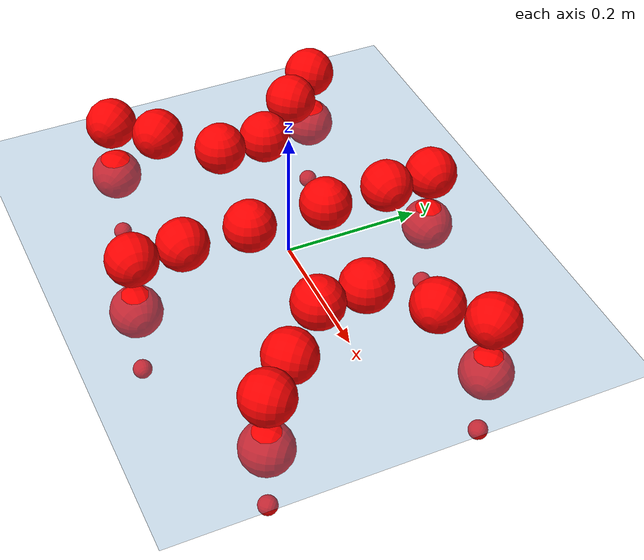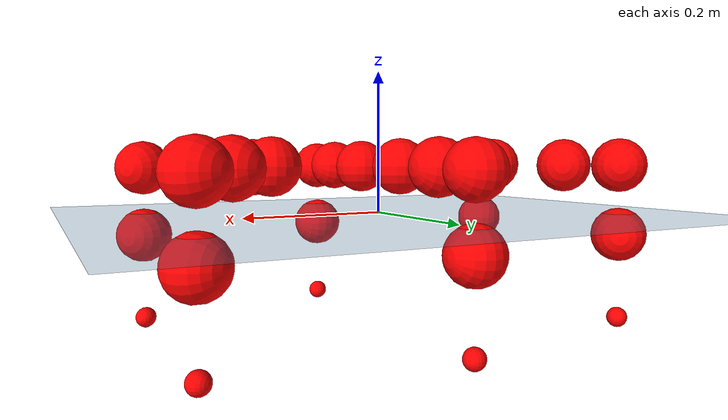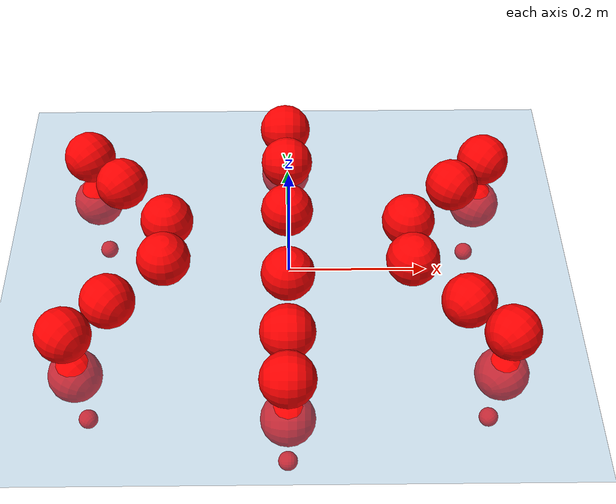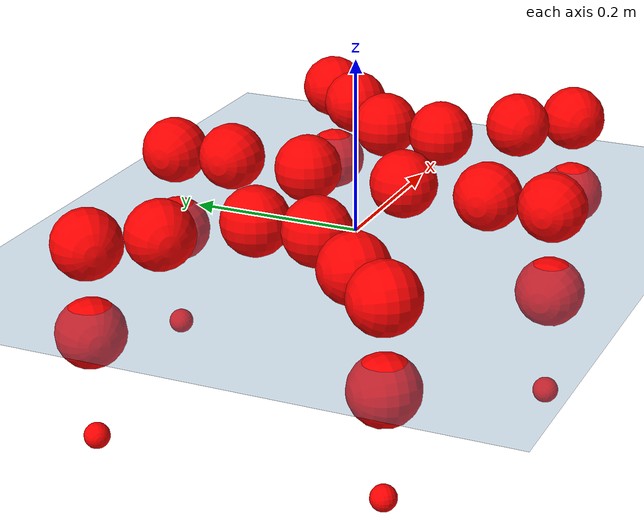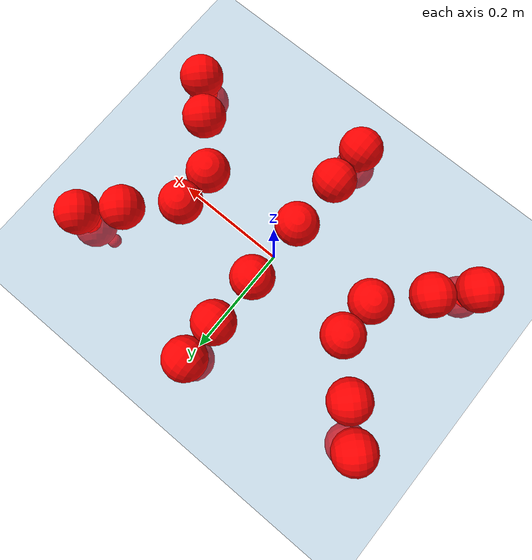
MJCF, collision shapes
<mujoco model="Golem">
  <compiler angle="radian" assetdir="assets" balanceinertia="true" inertiafromgeom="false"/>

  <option timestep="0.005" density="1.2" viscosity="2e-05"/>

  <size nkey="1"/>

  <visual>
    <quality shadowsize="8192"/>
    <map shadowclip="0.5"/>
  </visual>

  <default>
    <default class="/">
      <joint armature="0.01" damping="0.01" frictionloss="0.01"/>
      <geom contype="0" conaffinity="0" group="1" solref="-1000 -80"/>
      <site size="0.01 0.005 0.005" group="5"/>
      <general forcelimited="true" biastype="affine" gainprm="25" biasprm="0 -25 -0.5"/>
      <default class="visual">
        <geom type="mesh" group="2"/>
      </default>
      <default class="collision">
        <geom group="3"/>
      </default>
      <default class="foot">
        <geom size="0.01 0 0" condim="6" group="4" priority="1" solimp="0.015 1 0.01"/>
      </default>
      <default class="reward_collision_sphere">
        <geom group="5" rgba="1 0 0 1"/>
      </default>
    </default>
  </default>

  <asset>
    <texture type="skybox" colorspace="auto" name="//unnamed_texture_0" builtin="gradient" rgb1="0.95 0.95 0.95" rgb2="0.95 0.95 0.95" width="100" height="600"/>
    <texture type="2d" colorspace="auto" name="texplane" builtin="checker" rgb1="0.345 0.575 0.748" rgb2="0.345 0.575 0.748" markrgb="1 1 1" width="512" height="512"/>
    <material name="MatPlane" class="/" texture="texplane" texuniform="true" texrepeat="2 2" specular="0.9"/>
    <mesh name="body" class="/" file="body.stl" scale="0.001 0.001 0.001"/>
    <mesh name="coxa" class="/" file="coxa.stl" scale="0.001 0.001 0.001"/>
    <mesh name="femur" class="/" file="femur.stl" scale="0.001 0.001 0.001"/>
    <mesh name="tibia" class="/" file="tibia.stl" scale="0.001 0.001 0.001"/>
    <mesh name="tarsus" class="/" file="tarsus.stl" scale="0.001 0.001 0.001"/>
  </asset>

  <worldbody>
    <geom name="floor" class="/" size="100 100 0.125" type="plane" group="0" material="MatPlane"/>
    <light name="toplight_shadow" class="/" pos="0 0 5" dir="0.0990148 0.0990148 -0.990148" type="directional" ambient="0.04 0.04 0.04" diffuse="0.55 0.55 0.55" specular="0.12 0.12 0.12"/>
    <light name="toplight_fill" class="/" pos="0 0 5" dir="0.0990148 0.0990148 -0.990148" type="directional" castshadow="false" ambient="0.04 0.04 0.04" diffuse="0.3 0.3 0.3" specular="0.08 0.08 0.08"/>
    <body name="trunk" pos="-0.000986121 0.00128586 -0.000499097" quat="1 5.71918e-05 7.86079e-06 -0.000136882">
      <inertial pos="0.00113571 -0.000741348 -0.00531963" quat="0.999997 0.000677024 -0.00172637 0.00155286" mass="3.24323" diaginertia="0.0172185 0.00167017 0.0122943"/>
      <joint name="//unnamed_joint_0" type="free"/>
      <geom name="//unnamed_geom_1" class="/" pos="0 0 0.0668618" quat="1 0 0 0" type="mesh" rgba="0.9 0.9 0.9 1" mesh="body"/>
      <site name="imu" class="/" pos="0.141883 0.00123035 0.101834" size="0.00951226"/>
      <camera name="track" class="/" pos="0 -1.39559 0" quat="0.707107 0.707107 0 0" mode="trackcom"/>
      <camera name="ego_camera" class="/" pos="0.144452 0 0.104472" quat="-0.5 -0.5 0.5 0.5"/>
      <body name="coxa_RR" pos="-0.197933 -0.0578543 0.0690118" quat="0.382724 -1.24143e-05 -0.000394957 -0.923863">
        <inertial pos="-0.000369424 -0.00173162 0.00218622" quat="0.999992 -0.00168587 -0.000850533 -0.00341479" mass="0.174173" diaginertia="0.0170701 0.00168147 0.0124483"/>
        <joint name="coxa_joint_RR" class="/" pos="0 0 0" axis="-0.000502676 -0.00303778 -0.999995" range="-3.13122 3.13449" armature="0.00955784" damping="0.00798133" frictionloss="0.00934897"/>
        <geom name="//unnamed_geom_2" class="/" type="mesh" rgba="0.2 0.2 0.2 1" mesh="coxa"/>
        <geom name="//unnamed_geom_3" class="reward_collision_sphere" size="0.0380491" pos="-0.033335 0 0"/>
        <body name="femur_RR" pos="0.0681904 0.00073837 -0.00113217" quat="0.499771 -0.499987 0.500003 0.500239">
          <inertial pos="-0.000628254 0.000464974 0.000407352" quat="1 0.000129306 0.000366068 -0.000199964" mass="0.171563" diaginertia="0.0168933 0.00165604 0.0124371"/>
          <joint name="femur_joint_RR" class="/" pos="0 0 0" axis="0.00132616 -0.00154464 -0.999998" range="-3.13559 3.12702" armature="0.00950182" damping="0.00489934" frictionloss="0.00951724"/>
          <geom name="//unnamed_geom_4" class="/" type="mesh" rgba="0.9 0.9 0.9 1" mesh="femur"/>
          <geom name="//unnamed_geom_5" class="reward_collision_sphere" size="0.0380491"/>
          <body name="tibia_RR" pos="0.00064992 -0.076645 0.000948752" quat="0.000182287 1 7.24479e-05 -0.000132851">
            <inertial pos="-0.00097132 -0.000547097 -0.000417741" quat="0.999994 -0.00243201 -0.00233164 0.000318103" mass="0.169627" diaginertia="0.0168427 0.00164851 0.0126193"/>
            <joint name="tibia_joint_RR" class="/" pos="0 0 0" axis="0.000168907 -0.000608105 1" range="-3.12147 3.09743" armature="0.00947864" damping="0.00688955" frictionloss="0.00964457"/>
            <geom name="//unnamed_geom_6" class="/" type="mesh" rgba="0.2 0.2 0.2 1" mesh="tibia"/>
            <geom name="//unnamed_geom_7" class="reward_collision_sphere" size="0.0380491"/>
            <body name="tarsus_RR" pos="0.0978895 -0.000719155 -0.00080559" quat="1 -8.41233e-05 2.6966e-05 -0.000162251">
              <inertial pos="0.0687242 0.00276553 -0.000857387" quat="0.499612 0.501583 0.496567 0.502219" mass="0.174562" diaginertia="0.0173462 0.00169916 0.0126468"/>
              <joint name="tarsus_joint_RR" class="/" pos="0 0 0" axis="-0.00113175 -0.00754113 0.999971" range="-3.10359 3.14271" armature="0.00906053" damping="0.0417278" frictionloss="0.00913945"/>
              <geom name="//unnamed_geom_8" class="/" type="mesh" rgba="0.9 0.9 0.9 1" mesh="tarsus"/>
              <geom name="foot_1" class="foot" size="0.00907049" pos="0.124451 0 0" quat="0 -0.707107 0 0.707107"/>
              <geom name="//unnamed_geom_10" class="reward_collision_sphere" size="0.0380491"/>
              <geom name="//unnamed_geom_11" class="reward_collision_sphere" size="0.0142684" pos="0.119451 0 0"/>
              <site name="foot_1" class="foot" pos="0.124451 0 0" quat="0 -0.707107 0 0.707107" size="0.00951226"/>
            </body>
          </body>
        </body>
      </body>
      <body name="coxa_RM" pos="-0.000910416 -0.0929432 0.0661285" quat="0.707056 0.000123213 1.90496e-05 -0.707157">
        <inertial pos="-0.000173584 -0.000795055 -0.000476402" quat="1 0.00050761 0.000113969 -0.000175866" mass="0.171369" diaginertia="0.0168193 0.00164232 0.0123542"/>
        <joint name="coxa_joint_RM" class="/" pos="0 0 0" axis="-0.00478583 0.00250429 -0.999985" range="-3.13465 3.15261" armature="0.00960681" damping="0.00772822" frictionloss="0.00857592"/>
        <geom name="//unnamed_geom_12" class="/" type="mesh" rgba="0.2 0.2 0.2 1" mesh="coxa"/>
        <geom name="//unnamed_geom_13" class="reward_collision_sphere" size="0.0380491" pos="-0.033335 0 0"/>
        <body name="femur_RM" pos="0.0655288 -0.00117447 0.000569186" quat="0.499976 -0.499934 0.500084 0.500006">
          <inertial pos="-5.11878e-05 0.000293989 0.000359218" quat="0.999998 0.00133194 0.00033657 -0.00159821" mass="0.169976" diaginertia="0.0165475 0.00166181 0.0123445"/>
          <joint name="femur_joint_RM" class="/" pos="0 0 0" axis="0.0012041 0.00192519 -0.999997" range="-3.1485 3.15382" armature="0.0092524" damping="0" frictionloss="0.00951494"/>
          <geom name="//unnamed_geom_14" class="/" type="mesh" rgba="0.9 0.9 0.9 1" mesh="femur"/>
          <geom name="//unnamed_geom_15" class="reward_collision_sphere" size="0.0380491"/>
          <body name="tibia_RM" pos="0.00124481 -0.0734141 -0.000324284" quat="-4.40577e-06 1 -4.98222e-06 -5.10532e-07">
            <inertial pos="-0.00177788 -0.0021448 -0.00101239" quat="0.999959 -0.005836 -0.00628375 -0.00295711" mass="0.171073" diaginertia="0.0169107 0.00165196 0.0121495"/>
            <joint name="tibia_joint_RM" class="/" pos="0 0 0" axis="-0.00030608 -0.00025925 1" range="-3.13513 3.12033" armature="0.00912249" damping="0.0123553" frictionloss="0.00924433"/>
            <geom name="//unnamed_geom_16" class="/" type="mesh" rgba="0.2 0.2 0.2 1" mesh="tibia"/>
            <geom name="//unnamed_geom_17" class="reward_collision_sphere" size="0.0380491"/>
            <body name="tarsus_RM" pos="0.0978231 0.000869247 -0.000151579" quat="1 -0.000157836 5.69179e-05 -0.000128507">
              <inertial pos="0.0666561 0.000364809 0.000126889" quat="0.500501 0.497796 0.501371 0.500325" mass="0.17174" diaginertia="0.016688 0.00164735 0.0124125"/>
              <joint name="tarsus_joint_RM" class="/" pos="0 0 0" axis="-0.000615248 -0.000380587 1" range="-3.14047 3.14078" armature="0.00882276" damping="0.00578092" frictionloss="0.00975726"/>
              <geom name="//unnamed_geom_18" class="/" type="mesh" rgba="0.9 0.9 0.9 1" mesh="tarsus"/>
              <geom name="foot_2" class="foot" size="0.00944419" pos="0.124451 0 0" quat="0 -0.707107 0 0.707107"/>
              <geom name="//unnamed_geom_20" class="reward_collision_sphere" size="0.0380491"/>
              <geom name="//unnamed_geom_21" class="reward_collision_sphere" size="0.0142684" pos="0.119451 0 0"/>
              <site name="foot_2" class="foot" pos="0.124451 0 0" quat="0 -0.707107 0 0.707107" size="0.00951226"/>
            </body>
          </body>
        </body>
      </body>
      <body name="coxa_RF" pos="0.19793 -0.0592758 0.0661571" quat="0.923885 2.12208e-05 1.36253e-05 -0.382669">
        <inertial pos="0.00121433 -7.79463e-05 0.000214787" quat="0.999998 5.11085e-05 0.00178413 0.00121446" mass="0.173274" diaginertia="0.017331 0.00165561 0.0122971"/>
        <joint name="coxa_joint_RF" class="/" pos="0 0 0" axis="0.000723034 0.00156377 -0.999999" stiffness="0.000817047" range="-3.12994 3.1276" armature="0.00994667" damping="0.00846115" frictionloss="0.00926455"/>
        <geom name="//unnamed_geom_22" class="/" type="mesh" rgba="0.2 0.2 0.2 1" mesh="coxa"/>
        <geom name="//unnamed_geom_23" class="reward_collision_sphere" size="0.0380491" pos="-0.033335 0 0"/>
        <body name="femur_RF" pos="0.0674079 -0.000618076 -0.0016296" quat="0.499935 -0.499807 0.500291 0.499967">
          <inertial pos="-0.000659144 -0.000142043 -0.000380104" quat="0.999994 0.00217688 -0.00268433 -0.000468786" mass="0.171132" diaginertia="0.0170466 0.00168544 0.0123507"/>
          <joint name="femur_joint_RF" class="/" pos="0 0 0" axis="0.00111765 0.000273908 -0.999999" range="-3.11867 3.13963" armature="0.00947371" damping="0" frictionloss="0.00905298"/>
          <geom name="//unnamed_geom_24" class="/" type="mesh" rgba="0.9 0.9 0.9 1" mesh="femur"/>
          <geom name="//unnamed_geom_25" class="reward_collision_sphere" size="0.0380491"/>
          <body name="tibia_RF" pos="-7.46216e-05 -0.0745778 -0.000920985" quat="-1.71457e-07 1 -1.76925e-06 -1.27483e-06">
            <inertial pos="-0.000923126 0.000127506 -0.000167271" quat="0.999994 -0.00261773 -0.00232679 0.000829977" mass="0.172628" diaginertia="0.0173714 0.00166678 0.0125315"/>
            <joint name="tibia_joint_RF" class="/" pos="0 0 0" axis="4.90655e-06 1.09803e-06 1" range="-3.12731 3.14246" armature="0.009093" damping="0.0124701" frictionloss="0.00921981"/>
            <geom name="//unnamed_geom_26" class="/" type="mesh" rgba="0.2 0.2 0.2 1" mesh="tibia"/>
            <geom name="//unnamed_geom_27" class="reward_collision_sphere" size="0.0380491"/>
            <body name="tarsus_RF" pos="0.0967603 0.00103396 0.00142056" quat="1 -0.000551776 0.000169247 -0.000584303">
              <inertial pos="0.0665198 -0.00149985 0.000334352" quat="0.497694 0.49363 0.501548 0.507031" mass="0.17027" diaginertia="0.0171703 0.0016086 0.0123926"/>
              <joint name="tarsus_joint_RF" class="/" pos="0 0 0" axis="0.00200939 0.00329358 0.999993" range="-3.10776 3.12736" armature="0.0104934" damping="0" frictionloss="0.0095269"/>
              <geom name="//unnamed_geom_28" class="/" type="mesh" rgba="0.9 0.9 0.9 1" mesh="tarsus"/>
              <geom name="foot_3" class="foot" size="0.009891" pos="0.124451 0 0" quat="0 -0.707107 0 0.707107"/>
              <geom name="//unnamed_geom_30" class="reward_collision_sphere" size="0.0380491"/>
              <geom name="//unnamed_geom_31" class="reward_collision_sphere" size="0.0142684" pos="0.119451 0 0"/>
              <site name="foot_3" class="foot" pos="0.124451 0 0" quat="0 -0.707107 0 0.707107" size="0.00951226"/>
            </body>
          </body>
        </body>
      </body>
      <body name="coxa_LR" pos="-0.197336 0.0603348 0.0689371" quat="0.382794 -0.000124677 0.000658556 0.923833">
        <inertial pos="0.000921699 -0.00210997 -0.000527205" quat="0.999996 -0.00190066 -0.00107988 -0.00180666" mass="0.168661" diaginertia="0.0166269 0.00164922 0.0121426"/>
        <joint name="coxa_joint_LR" class="/" pos="0 0 0" axis="-0.00174148 0.000334485 -0.999998" range="-3.11999 3.17081" armature="0.0088674" damping="0.00744582" frictionloss="0.00937356"/>
        <geom name="//unnamed_geom_32" class="/" type="mesh" rgba="0.2 0.2 0.2 1" mesh="coxa"/>
        <geom name="//unnamed_geom_33" class="reward_collision_sphere" size="0.0380491" pos="-0.033335 0 0"/>
        <body name="femur_LR" pos="0.069307 -0.00181682 -0.000967422" quat="0.5 -0.499994 0.499981 0.500025">
          <inertial pos="-0.000915076 5.49547e-05 -0.000487626" quat="0.999968 -0.00238569 -0.000884237 0.00760592" mass="0.172725" diaginertia="0.0169538 0.00165044 0.0127194"/>
          <joint name="femur_joint_LR" class="/" pos="0 0 0" axis="0.000993293 0.00234263 0.999997" range="-3.10023 3.12737" armature="0.00927438" damping="0.00388359" frictionloss="0.00927144"/>
          <geom name="//unnamed_geom_34" class="/" type="mesh" rgba="0.9 0.9 0.9 1" mesh="femur"/>
          <geom name="//unnamed_geom_35" class="reward_collision_sphere" size="0.0380491"/>
          <body name="tibia_LR" pos="-0.000456591 -0.0765296 -0.00189708" quat="-1.00153e-05 1 -0.000382416 0.000203269">
            <inertial pos="-0.000584995 -0.00157921 0.000542003" quat="0.999997 0.000541634 -0.00111164 -0.00229818" mass="0.171829" diaginertia="0.0168545 0.00163009 0.0124287"/>
            <joint name="tibia_joint_LR" class="/" pos="0 0 0" axis="-0.00328931 -0.000367158 -0.999995" range="-3.15143 3.12637" armature="0.0097581" damping="0" frictionloss="0.00932635"/>
            <geom name="//unnamed_geom_36" class="/" type="mesh" rgba="0.2 0.2 0.2 1" mesh="tibia"/>
            <geom name="//unnamed_geom_37" class="reward_collision_sphere" size="0.0380491"/>
            <body name="tarsus_LR" pos="0.0989114 0.000672352 0.000217374" quat="1 -0.000326985 -0.000349519 4.41301e-05">
              <inertial pos="0.0673085 9.78174e-05 0.000347329" quat="0.501046 0.499267 0.499839 0.499846" mass="0.170378" diaginertia="0.0167741 0.00164187 0.0122704"/>
              <joint name="tarsus_joint_LR" class="/" pos="0 0 0" axis="-0.00280804 0.000217977 -0.999996" range="-3.16033 3.13547" armature="0.00956084" damping="0.029262" frictionloss="0.00891879"/>
              <geom name="//unnamed_geom_38" class="/" type="mesh" rgba="0.9 0.9 0.9 1" mesh="tarsus"/>
              <geom name="foot_4" class="foot" size="0.00933144" pos="0.124451 0 0" quat="0.707107 0 -0.707107 0"/>
              <geom name="//unnamed_geom_40" class="reward_collision_sphere" size="0.0380491"/>
              <geom name="//unnamed_geom_41" class="reward_collision_sphere" size="0.0142684" pos="0.119451 0 0"/>
              <site name="foot_4" class="foot" pos="0.124451 0 0" quat="0.707107 0 -0.707107 0" size="0.00951226"/>
            </body>
          </body>
        </body>
      </body>
      <body name="coxa_LM" pos="-0.000999824 0.0900398 0.0673557" quat="0.706931 -0.000101767 -0.000376378 0.707283">
        <inertial pos="-0.000431198 0.000661068 0.000694656" quat="0.999999 -0.000947203 -0.000488638 0.000262417" mass="0.174412" diaginertia="0.0168665 0.00163053 0.0127435"/>
        <joint name="coxa_joint_LM" class="/" pos="0 0 0" axis="0.00239046 0.000513258 -0.999997" stiffness="0.00611027" range="-3.13811 3.139" armature="0.0102283" damping="0.00319748" frictionloss="0.0096407"/>
        <geom name="//unnamed_geom_42" class="/" type="mesh" rgba="0.2 0.2 0.2 1" mesh="coxa"/>
        <geom name="//unnamed_geom_43" class="reward_collision_sphere" size="0.0380491" pos="-0.033335 0 0"/>
        <body name="femur_LM" pos="0.0627243 -0.000648291 0.000302043" quat="0.500089 -0.500071 0.499895 0.499945">
          <inertial pos="0.000541257 -0.000954127 0.0012332" quat="0.999999 -0.00018104 -0.00127102 0.00102121" mass="0.172213" diaginertia="0.0167402 0.00165018 0.0125981"/>
          <joint name="femur_joint_LM" class="/" pos="0 0 0" axis="0.00636183 -0.00447555 0.99997" range="-3.12927 3.13038" armature="0.00901522" damping="0.00624917" frictionloss="0.00945092"/>
          <geom name="//unnamed_geom_44" class="/" type="mesh" rgba="0.9 0.9 0.9 1" mesh="femur"/>
          <geom name="//unnamed_geom_45" class="reward_collision_sphere" size="0.0380491"/>
          <body name="tibia_LM" pos="0.00193577 -0.0729258 0.00178815" quat="-0.000100602 1 -0.000168575 0.000122701">
            <inertial pos="0.000594135 -0.0021575 0.00198586" quat="0.999951 0.00277066 0.00586125 0.00751396" mass="0.168898" diaginertia="0.0170992 0.00162848 0.0123429"/>
            <joint name="tibia_joint_LM" class="/" pos="0 0 0" axis="0.00103246 0.000160462 -0.999999" range="-3.13448 3.11343" armature="0.00915155" damping="0.00439048" frictionloss="0.00941619"/>
            <geom name="//unnamed_geom_46" class="/" type="mesh" rgba="0.2 0.2 0.2 1" mesh="tibia"/>
            <geom name="//unnamed_geom_47" class="reward_collision_sphere" size="0.0380491"/>
            <body name="tarsus_LM" pos="0.0982269 0.000364854 0.00037831" quat="1 0.000177745 0.000401031 -0.000149897">
              <inertial pos="0.0676803 5.45366e-05 -0.000858342" quat="0.502632 0.502501 0.492639 0.502157" mass="0.175764" diaginertia="0.0170498 0.00165894 0.0125827"/>
              <joint name="tarsus_joint_LM" class="/" pos="0 0 0" axis="0.00316695 -0.00322355 -0.99999" range="-3.1414 3.11567" armature="0.00993496" damping="0" frictionloss="0.00953624"/>
              <geom name="//unnamed_geom_48" class="/" type="mesh" rgba="0.9 0.9 0.9 1" mesh="tarsus"/>
              <geom name="foot_5" class="foot" size="0.00953419" pos="0.124451 0 0" quat="0.707107 0 -0.707107 0"/>
              <geom name="//unnamed_geom_50" class="reward_collision_sphere" size="0.0380491"/>
              <geom name="//unnamed_geom_51" class="reward_collision_sphere" size="0.0142684" pos="0.119451 0 0"/>
              <site name="foot_5" class="foot" pos="0.124451 0 0" quat="0.707107 0 -0.707107 0" size="0.00951226"/>
            </body>
          </body>
        </body>
      </body>
      <body name="coxa_LF" pos="0.196751 0.0585719 0.0679382" quat="0.924129 5.19867e-05 0.000149781 0.38208">
        <inertial pos="-0.000648888 0.000512718 -0.000773503" quat="0.999951 -0.0075988 -0.00178847 -0.00603146" mass="0.176336" diaginertia="0.0171929 0.00169072 0.0121982"/>
        <joint name="coxa_joint_LF" class="/" pos="0 0 0" axis="-0.00153822 0.000659796 -0.999999" range="-3.13851 3.13611" armature="0.00962038" damping="0.00368299" frictionloss="0.00956634"/>
        <geom name="//unnamed_geom_52" class="/" type="mesh" rgba="0.2 0.2 0.2 1" mesh="coxa"/>
        <geom name="//unnamed_geom_53" class="reward_collision_sphere" size="0.0380491" pos="-0.033335 0 0"/>
        <body name="femur_LF" pos="0.065157 -0.000259751 -0.000585956" quat="0.499639 -0.50022 0.499925 0.500215">
          <inertial pos="0.00122333 0.000937637 0.00153565" quat="0.999989 -0.00152799 -0.000472223 0.00434651" mass="0.16999" diaginertia="0.0167262 0.00165053 0.012141"/>
          <joint name="femur_joint_LF" class="/" pos="0 0 0" axis="-0.00530491 -0.00106887 0.999985" range="-3.14324 3.17902" armature="0.00951065" damping="0" frictionloss="0.00957214"/>
          <geom name="//unnamed_geom_54" class="/" type="mesh" rgba="0.9 0.9 0.9 1" mesh="femur"/>
          <geom name="//unnamed_geom_55" class="reward_collision_sphere" size="0.0380491"/>
          <body name="tibia_LF" pos="0.00154036 -0.0750402 0.000590025" quat="1.38758e-05 1 2.17045e-05 2.62165e-06">
            <inertial pos="-0.000130774 -0.000628211 0.000171391" quat="0.999999 0.000481617 0.000655798 0.001425" mass="0.171861" diaginertia="0.0169317 0.00165177 0.0124365"/>
            <joint name="tibia_joint_LF" class="/" pos="0 0 0" axis="0.000130123 -0.000243771 -1" range="-3.11941 3.1376" armature="0.00883032" damping="0" frictionloss="0.00913317"/>
            <geom name="//unnamed_geom_56" class="/" type="mesh" rgba="0.2 0.2 0.2 1" mesh="tibia"/>
            <geom name="//unnamed_geom_57" class="reward_collision_sphere" size="0.0380491"/>
            <body name="tarsus_LF" pos="0.0978387 -1.1756e-05 0.000368546" quat="1 -0.000402998 -0.000121517 0.000262612">
              <inertial pos="0.0668059 -0.000962484 0.000230973" quat="0.500777 0.500077 0.499818 0.499327" mass="0.17062" diaginertia="0.0171054 0.00166589 0.0124622"/>
              <joint name="tarsus_joint_LF" class="/" pos="0 0 0" axis="-0.000798863 -0.00526764 -0.999986" stiffness="0.0235137" range="-3.16681 3.16939" armature="0.00951388" damping="0" frictionloss="0.00938441"/>
              <geom name="//unnamed_geom_58" class="/" type="mesh" rgba="0.9 0.9 0.9 1" mesh="tarsus"/>
              <geom name="foot_6" class="foot" size="0.00916867" pos="0.124451 0 0" quat="0.707107 0 -0.707107 0"/>
              <geom name="//unnamed_geom_60" class="reward_collision_sphere" size="0.0380491"/>
              <geom name="//unnamed_geom_61" class="reward_collision_sphere" size="0.0142684" pos="0.119451 0 0"/>
              <site name="foot_6" class="foot" pos="0.124451 0 0" quat="0.707107 0 -0.707107 0" size="0.00951226"/>
            </body>
          </body>
        </body>
      </body>
    </body>
  </worldbody>

  <contact>
    <pair class="/" geom1="floor" geom2="foot_1" name="//unnamed_contact_0"/>
    <pair class="/" geom1="floor" geom2="foot_2" name="//unnamed_contact_1"/>
    <pair class="/" geom1="floor" geom2="foot_3" name="//unnamed_contact_2"/>
    <pair class="/" geom1="floor" geom2="foot_4" name="//unnamed_contact_3"/>
    <pair class="/" geom1="floor" geom2="foot_5" name="//unnamed_contact_4"/>
    <pair class="/" geom1="floor" geom2="foot_6" name="//unnamed_contact_5"/>
  </contact>

  <actuator>
    <general name="coxa_joint_RR" class="/" joint="coxa_joint_RR" forcerange="-6.69033 6.69033" gainprm="23.0034" biasprm="0 -23.0034 -0.48891"/>
    <general name="femur_joint_RR" class="/" joint="femur_joint_RR" forcerange="-7.16042 7.16042" gainprm="23.0034" biasprm="0 -23.0034 -0.48891"/>
    <general name="tibia_joint_RR" class="/" joint="tibia_joint_RR" forcerange="-6.49545 6.49545" gainprm="23.0034" biasprm="0 -23.0034 -0.48891"/>
    <general name="tarsus_joint_RR" class="/" joint="tarsus_joint_RR" forcerange="-7.02198 7.02198" gainprm="23.0034" biasprm="0 -23.0034 -0.48891"/>
    <general name="coxa_joint_RM" class="/" joint="coxa_joint_RM" forcerange="-6.94014 6.94014" gainprm="23.0034" biasprm="0 -23.0034 -0.48891"/>
    <general name="femur_joint_RM" class="/" joint="femur_joint_RM" forcerange="-6.97979 6.97979" gainprm="23.0034" biasprm="0 -23.0034 -0.48891"/>
    <general name="tibia_joint_RM" class="/" joint="tibia_joint_RM" forcerange="-6.43005 6.43005" gainprm="23.0034" biasprm="0 -23.0034 -0.48891"/>
    <general name="tarsus_joint_RM" class="/" joint="tarsus_joint_RM" forcerange="-7.13656 7.13656" gainprm="23.0034" biasprm="0 -23.0034 -0.48891"/>
    <general name="coxa_joint_RF" class="/" joint="coxa_joint_RF" forcerange="-6.8869 6.8869" gainprm="23.0034" biasprm="0 -23.0034 -0.48891"/>
    <general name="femur_joint_RF" class="/" joint="femur_joint_RF" forcerange="-7.46245 7.46245" gainprm="23.0034" biasprm="0 -23.0034 -0.48891"/>
    <general name="tibia_joint_RF" class="/" joint="tibia_joint_RF" forcerange="-6.73065 6.73065" gainprm="23.0034" biasprm="0 -23.0034 -0.48891"/>
    <general name="tarsus_joint_RF" class="/" joint="tarsus_joint_RF" forcerange="-7.45438 7.45438" gainprm="23.0034" biasprm="0 -23.0034 -0.48891"/>
    <general name="coxa_joint_LR" class="/" joint="coxa_joint_LR" forcerange="-6.73206 6.73206" gainprm="23.0034" biasprm="0 -23.0034 -0.48891"/>
    <general name="femur_joint_LR" class="/" joint="femur_joint_LR" forcerange="-6.69287 6.69287" gainprm="23.0034" biasprm="0 -23.0034 -0.48891"/>
    <general name="tibia_joint_LR" class="/" joint="tibia_joint_LR" forcerange="-6.80831 6.80831" gainprm="23.0034" biasprm="0 -23.0034 -0.48891"/>
    <general name="tarsus_joint_LR" class="/" joint="tarsus_joint_LR" forcerange="-6.96775 6.96775" gainprm="23.0034" biasprm="0 -23.0034 -0.48891"/>
    <general name="coxa_joint_LM" class="/" joint="coxa_joint_LM" forcerange="-6.71015 6.71015" gainprm="23.0034" biasprm="0 -23.0034 -0.48891"/>
    <general name="femur_joint_LM" class="/" joint="femur_joint_LM" forcerange="-6.9879 6.9879" gainprm="23.0034" biasprm="0 -23.0034 -0.48891"/>
    <general name="tibia_joint_LM" class="/" joint="tibia_joint_LM" forcerange="-6.55222 6.55222" gainprm="23.0034" biasprm="0 -23.0034 -0.48891"/>
    <general name="tarsus_joint_LM" class="/" joint="tarsus_joint_LM" forcerange="-6.93374 6.93374" gainprm="23.0034" biasprm="0 -23.0034 -0.48891"/>
    <general name="coxa_joint_LF" class="/" joint="coxa_joint_LF" forcerange="-6.70268 6.70268" gainprm="23.0034" biasprm="0 -23.0034 -0.48891"/>
    <general name="femur_joint_LF" class="/" joint="femur_joint_LF" forcerange="-6.68828 6.68828" gainprm="23.0034" biasprm="0 -23.0034 -0.48891"/>
    <general name="tibia_joint_LF" class="/" joint="tibia_joint_LF" forcerange="-6.86063 6.86063" gainprm="23.0034" biasprm="0 -23.0034 -0.48891"/>
    <general name="tarsus_joint_LF" class="/" joint="tarsus_joint_LF" forcerange="-6.95349 6.95349" gainprm="23.0034" biasprm="0 -23.0034 -0.48891"/>
  </actuator>

  <sensor>
    <gyro site="imu" name="imu_angular_velocity"/>
    <velocimeter site="imu" name="imu_linear_velocity"/>
    <framelinvel objtype="site" objname="foot_1" name="foot_1_global_linear_velocity"/>
    <framelinvel objtype="site" objname="foot_2" name="foot_2_global_linear_velocity"/>
    <framelinvel objtype="site" objname="foot_3" name="foot_3_global_linear_velocity"/>
    <framelinvel objtype="site" objname="foot_4" name="foot_4_global_linear_velocity"/>
    <framelinvel objtype="site" objname="foot_5" name="foot_5_global_linear_velocity"/>
    <framelinvel objtype="site" objname="foot_6" name="foot_6_global_linear_velocity"/>
  </sensor>

  <keyframe>
    <key name="home" qpos="0 0 0.1457 1 0 0 0 0 0 0 0 0 0 0 0 0 0 0 0 0 0 0 0 0 0 0 0 0 0 0 0"/>
  </keyframe>
</mujoco>
